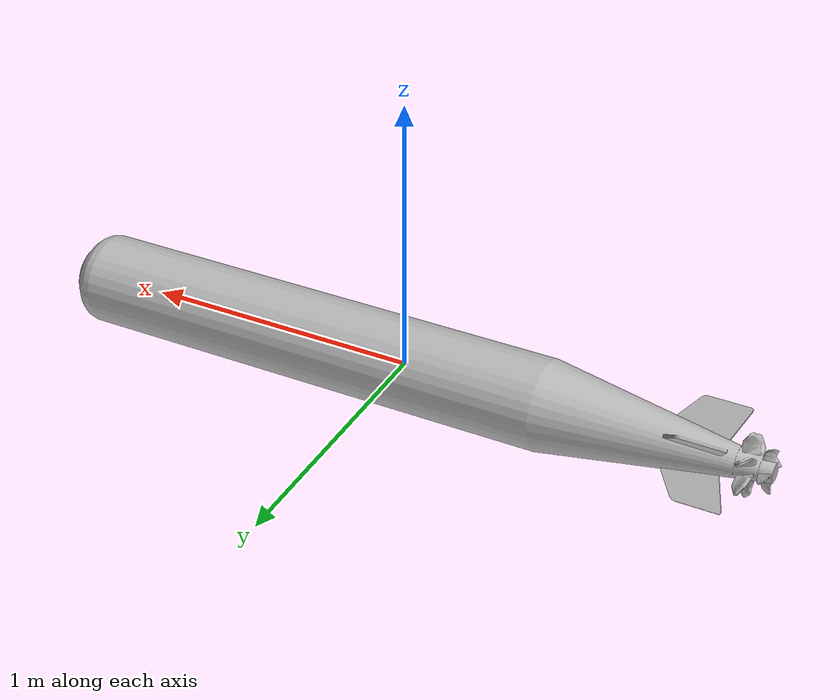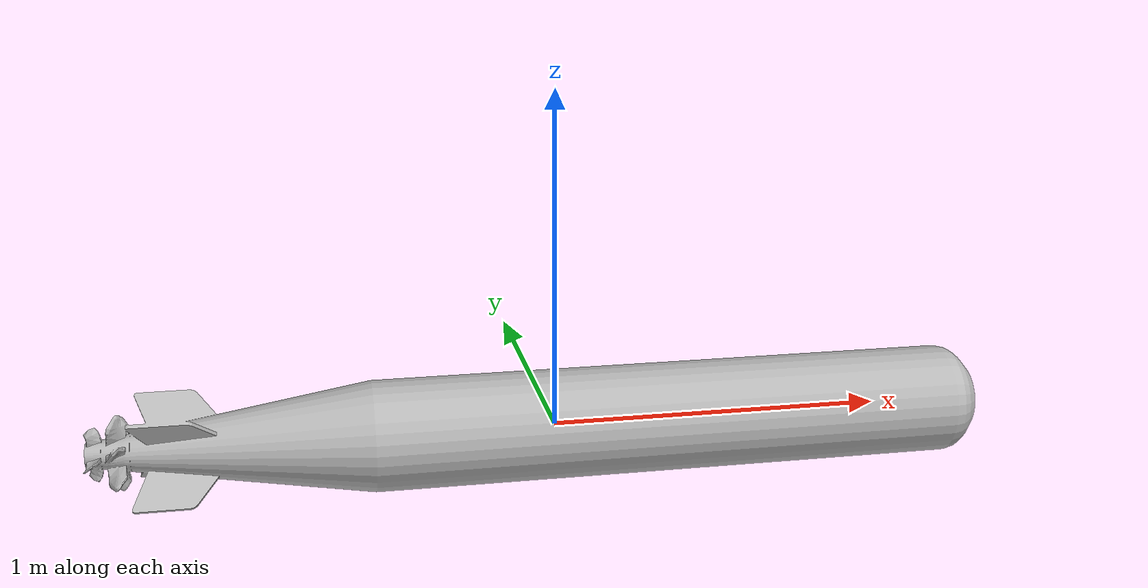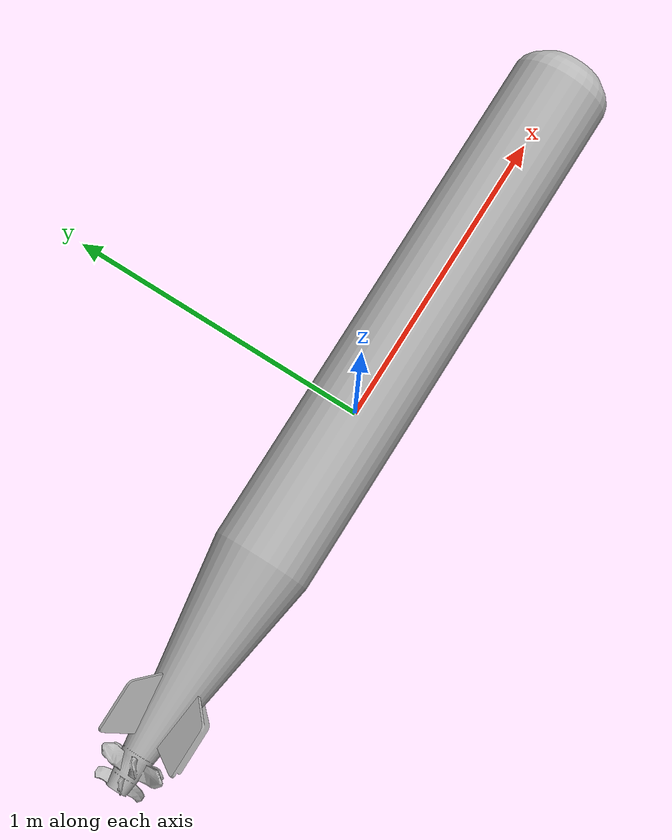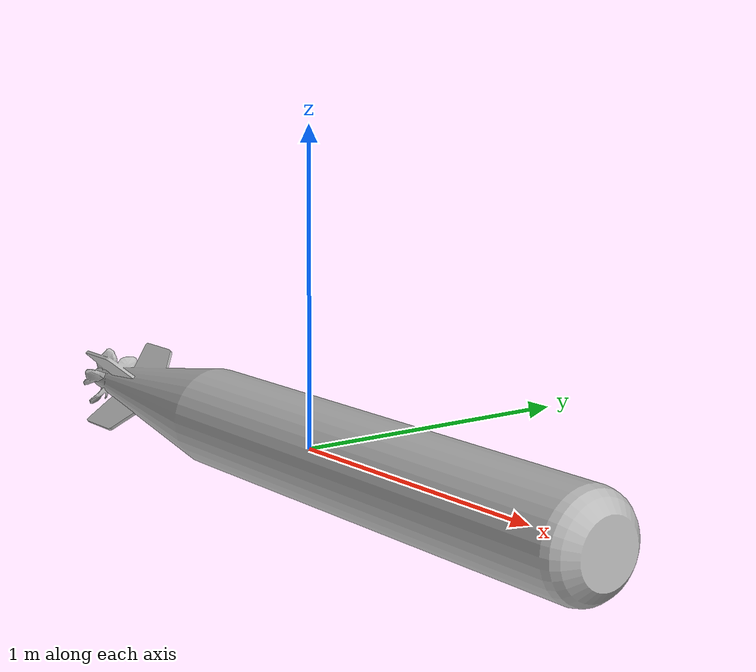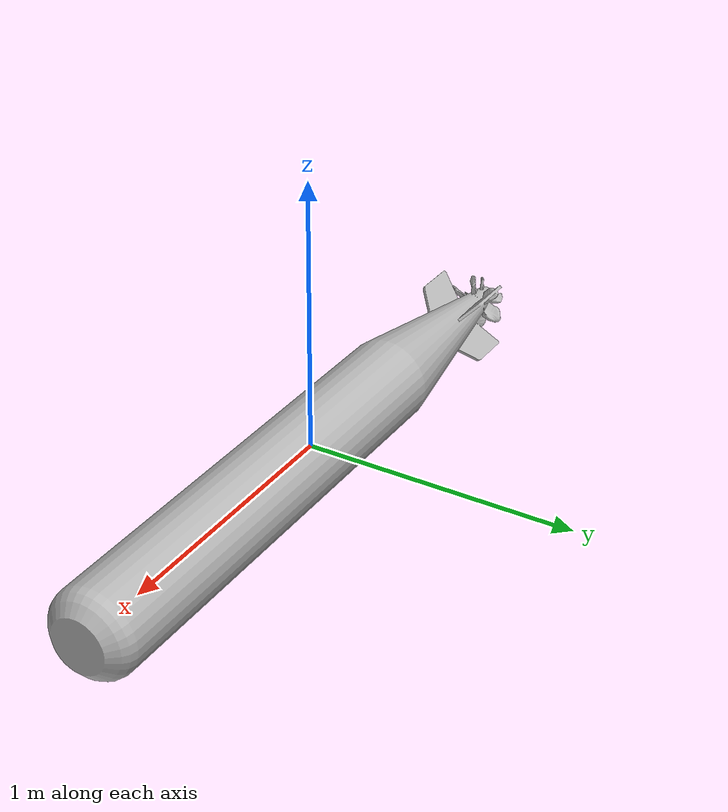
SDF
<?xml version="1.0"?>
<sdf version="1.6">
  <model name="torpedo_mk46">
    <static>false</static>
    <link name="base_link">
      <inertial>
        <!-- See python script in model folder for calcs -->
        <mass>40</mass>
        <inertia>
          <ixx>0.53</ixx>
          <ixy>0.0</ixy>
          <ixz>0.0</ixz>
          <iyy>18.0</iyy>
          <iyz>0.0</iyz>
          <izz>18.0</izz>
        </inertia>
      </inertial>
      <visual name="visual">
        <geometry>
           <mesh>
            <uri>file://torpedo_mk46/meshes/torpedo_mk46.dae</uri>
          </mesh>
        </geometry>
      </visual>
      <collision name="collision">
        <pose>0 0 0 0 0 0</pose>
        <geometry>
          <mesh>
            <uri>file://torpedo_mk46/meshes/torpedo_mk46_collision.dae</uri>
          </mesh>
        </geometry>
      </collision>
    </link>
  </model>
</sdf>
